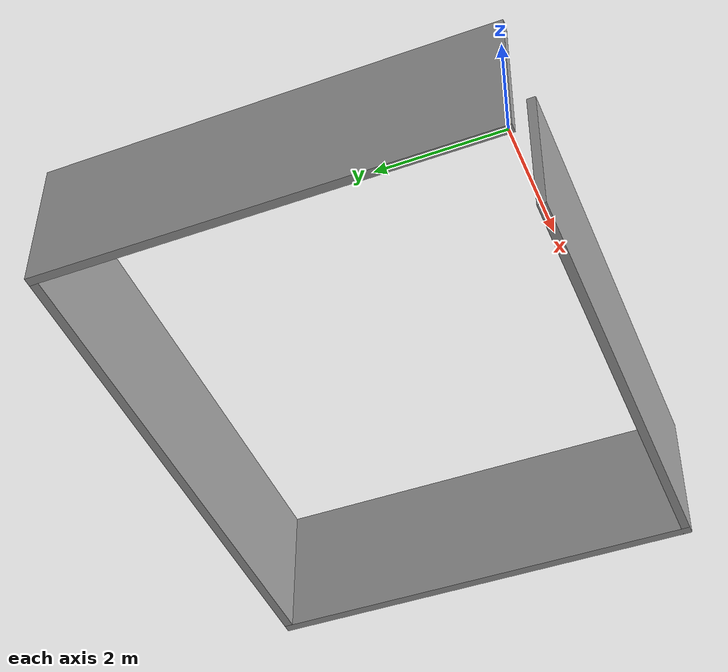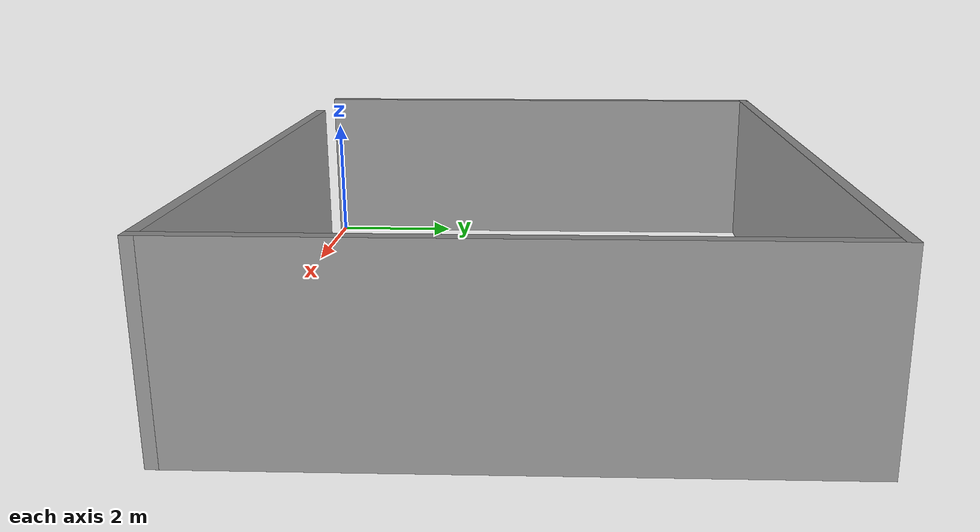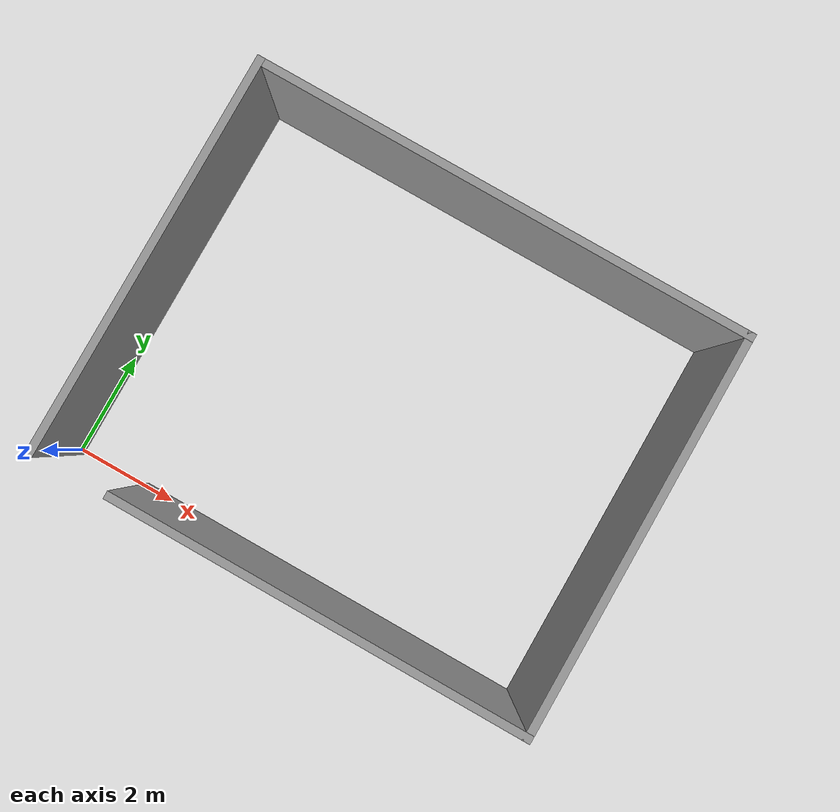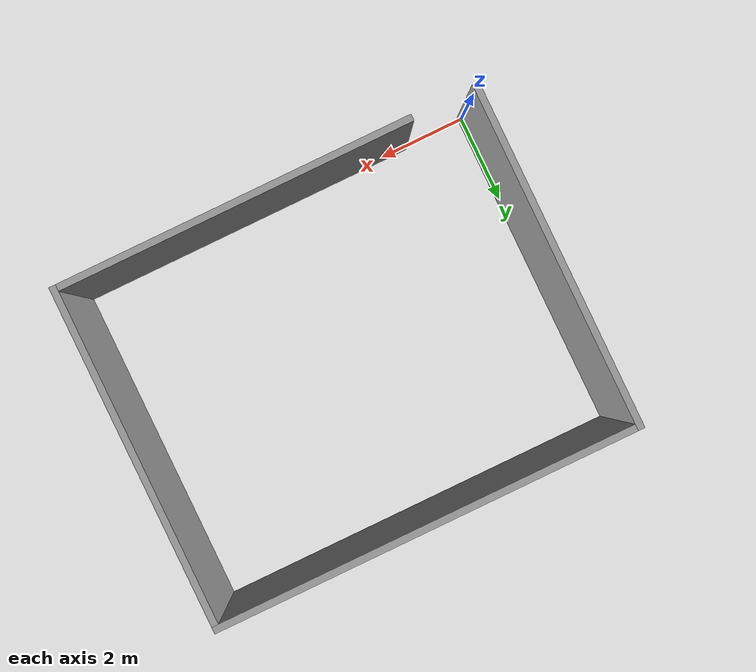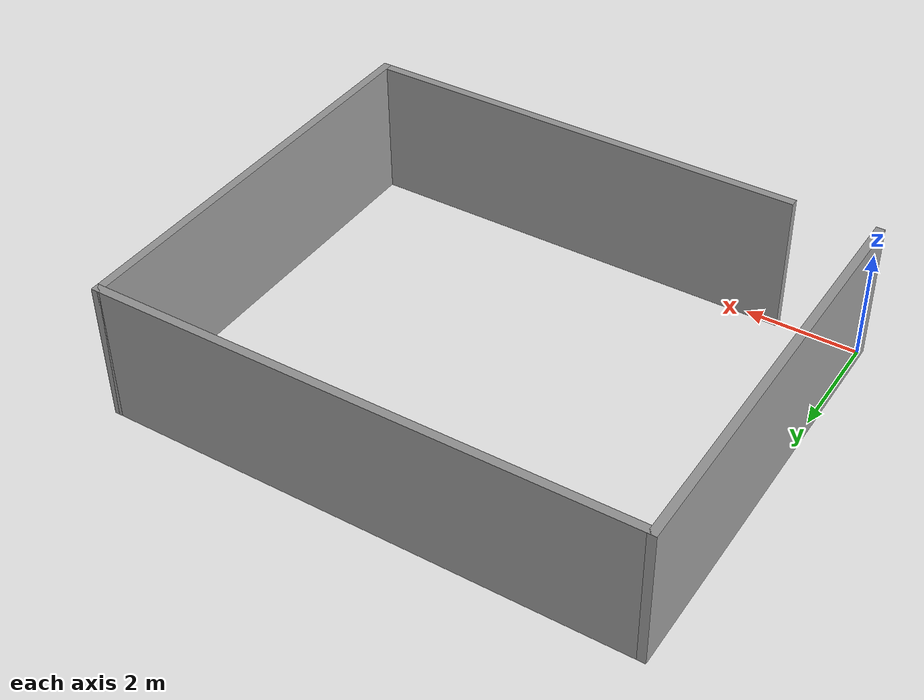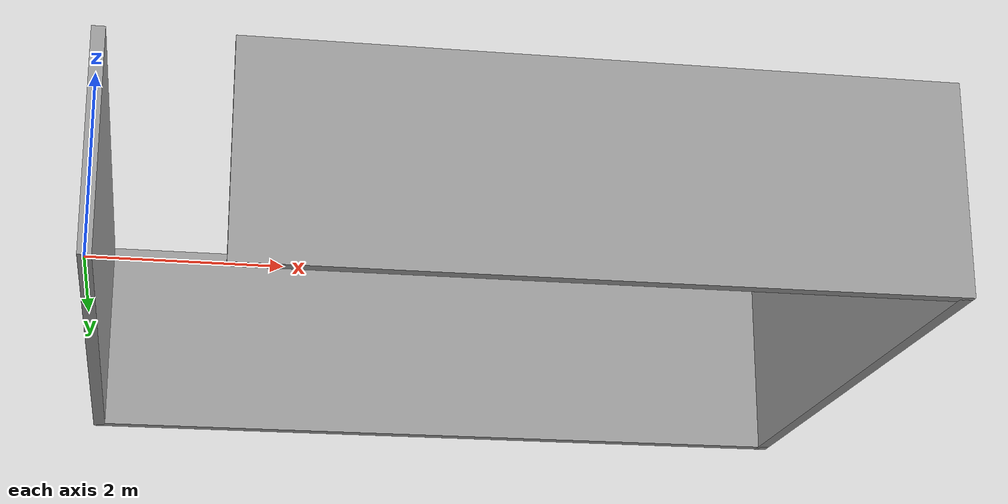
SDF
<?xml version='1.0'?>
<sdf version='1.7'>
  <model name='dd_502_room'>
    <pose>4.675 3.75 0 0 -0 0</pose>
    <link name='Wall_3'>
      <collision name='Wall_3_Collision'>
        <geometry>
          <box>
            <size>7.65 0.15 2.5</size>
          </box>
        </geometry>
        <pose>0 0 1.25 0 -0 0</pose>
      </collision>
      <visual name='Wall_3_Visual'>
        <pose>0 0 1.25 0 -0 0</pose>
        <geometry>
          <box>
            <size>7.65 0.15 2.5</size>
          </box>
        </geometry>
        <material>
          <script>
            <uri>file://media/materials/scripts/gazebo.material</uri>
            <name>Gazebo/Grey</name>
          </script>
          <ambient>1 1 1 1</ambient>
        </material>
        <meta>
          <layer>0</layer>
        </meta>
      </visual>
      <pose>-4.675 -0 0 0 -0 1.5708</pose>
    </link>
    <link name='Wall_5'>
      <collision name='Wall_5_Collision'>
        <geometry>
          <box>
            <size>9.5 0.15 2.5</size>
          </box>
        </geometry>
        <pose>0 0 1.25 0 -0 0</pose>
      </collision>
      <visual name='Wall_5_Visual'>
        <pose>0 0 1.25 0 -0 0</pose>
        <geometry>
          <box>
            <size>9.5 0.15 2.5</size>
          </box>
        </geometry>
        <material>
          <script>
            <uri>file://media/materials/scripts/gazebo.material</uri>
            <name>Gazebo/Grey</name>
          </script>
          <ambient>1 1 1 1</ambient>
        </material>
        <meta>
          <layer>0</layer>
        </meta>
      </visual>
      <pose>-0 3.75 0 0 -0 0</pose>
    </link>
    <link name='Wall_7'>
      <collision name='Wall_7_Collision'>
        <geometry>
          <box>
            <size>7.65 0.15 2.5</size>
          </box>
        </geometry>
        <pose>0 0 1.25 0 -0 0</pose>
      </collision>
      <visual name='Wall_7_Visual'>
        <pose>0 0 1.25 0 -0 0</pose>
        <geometry>
          <box>
            <size>7.65 0.15 2.5</size>
          </box>
        </geometry>
        <material>
          <script>
            <uri>file://media/materials/scripts/gazebo.material</uri>
            <name>Gazebo/Grey</name>
          </script>
          <ambient>1 1 1 1</ambient>
        </material>
        <meta>
          <layer>0</layer>
        </meta>
      </visual>
      <pose>4.675 -0 0 0 -0 -1.5708</pose>
    </link>
    <link name='Wall_9'>
      <collision name='Wall_9_Collision'>
        <geometry>
          <box>
            <size>8 0.15 2.5</size>
          </box>
        </geometry>
        <pose>0 0 1.25 0 -0 0</pose>
      </collision>
      <visual name='Wall_9_Visual'>
        <pose>0 0 1.25 0 -0 0</pose>
        <geometry>
          <box>
            <size>8 0.15 2.5</size>
          </box>
        </geometry>
        <material>
          <script>
            <uri>file://media/materials/scripts/gazebo.material</uri>
            <name>Gazebo/Grey</name>
          </script>
          <ambient>1 1 1 1</ambient>
        </material>
        <meta>
          <layer>0</layer>
        </meta>
      </visual>
      <pose>0.75 -3.75 0 0 -0 3.14159</pose>
    </link>
    <static>1</static>
  </model>
</sdf>
